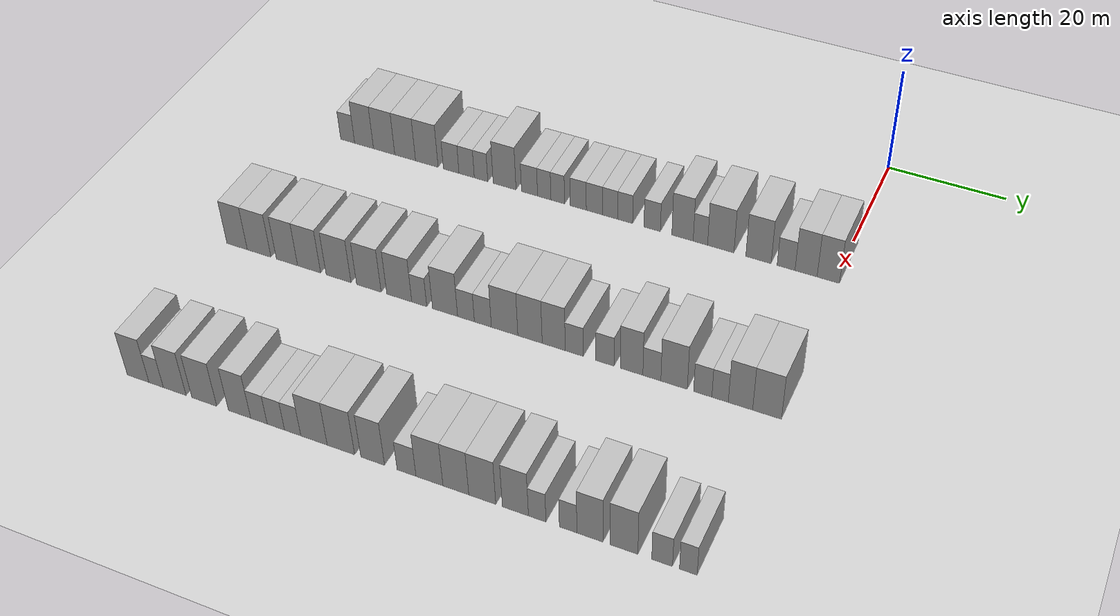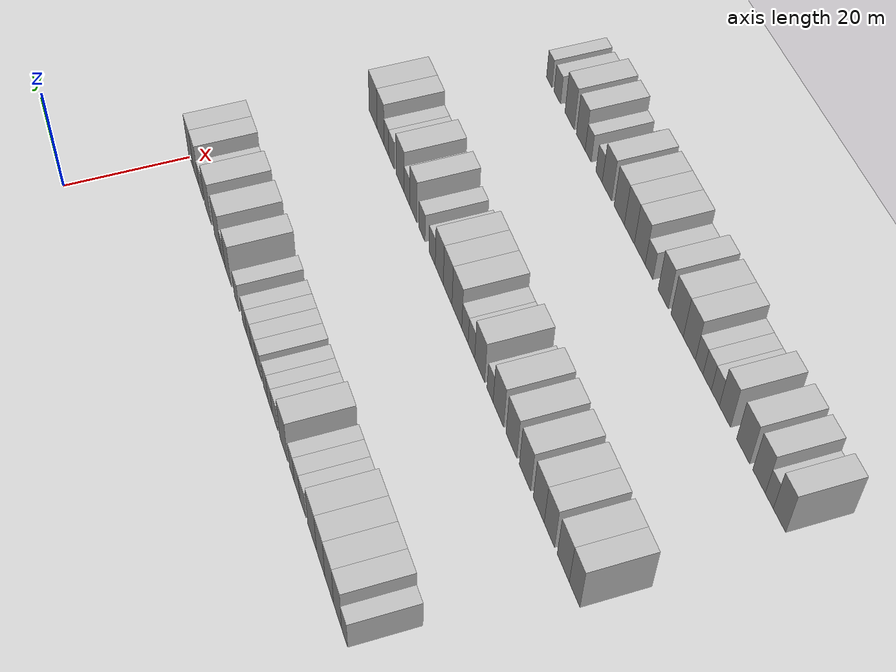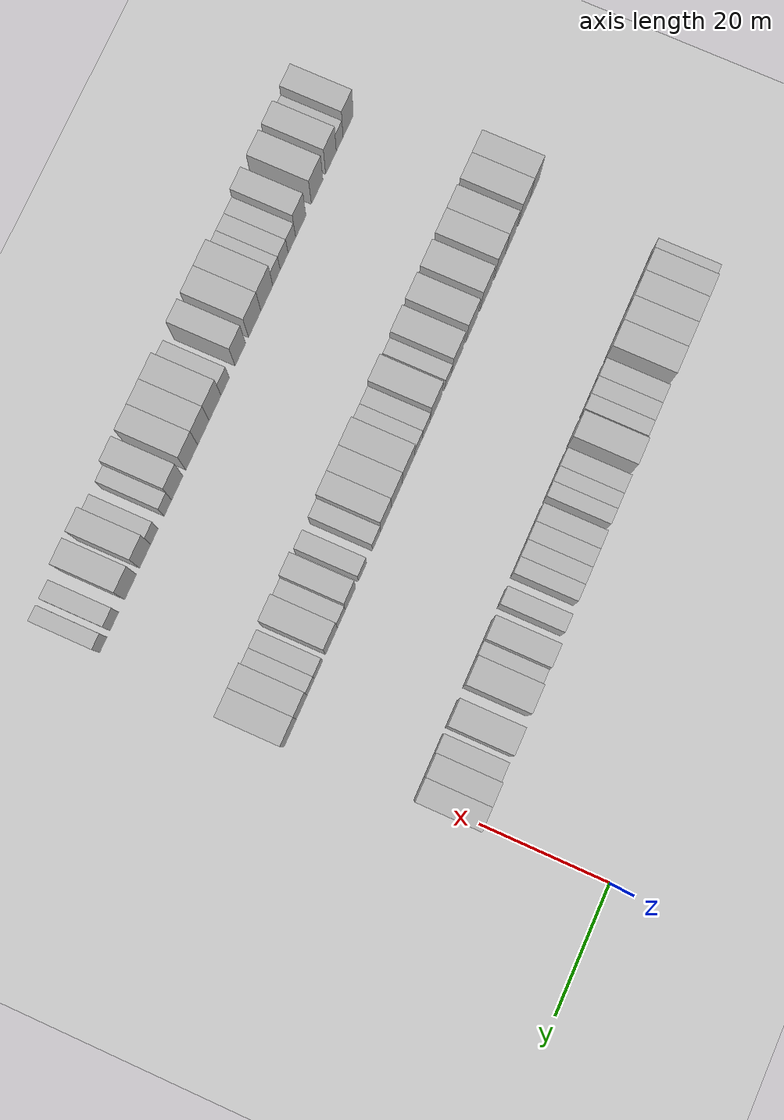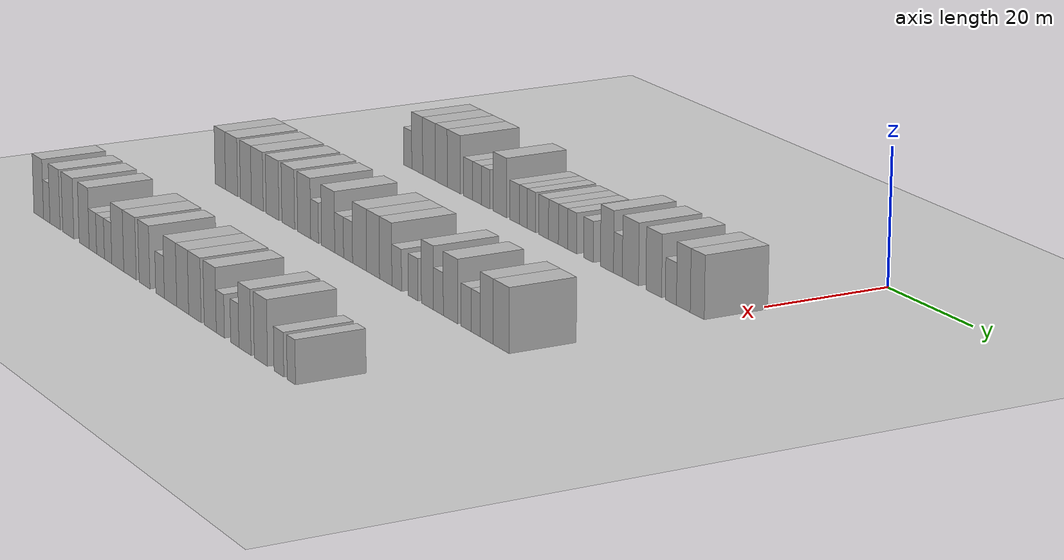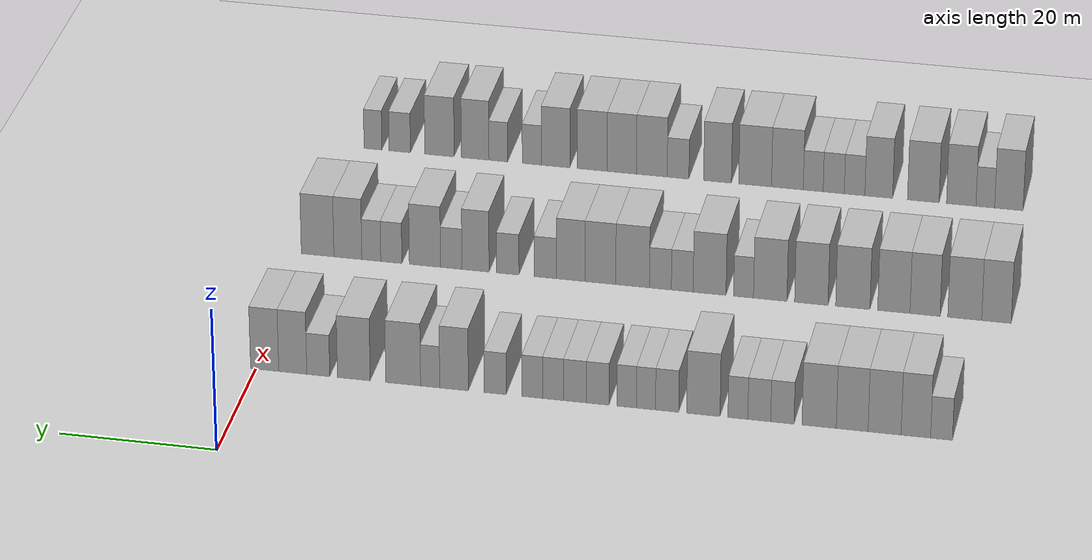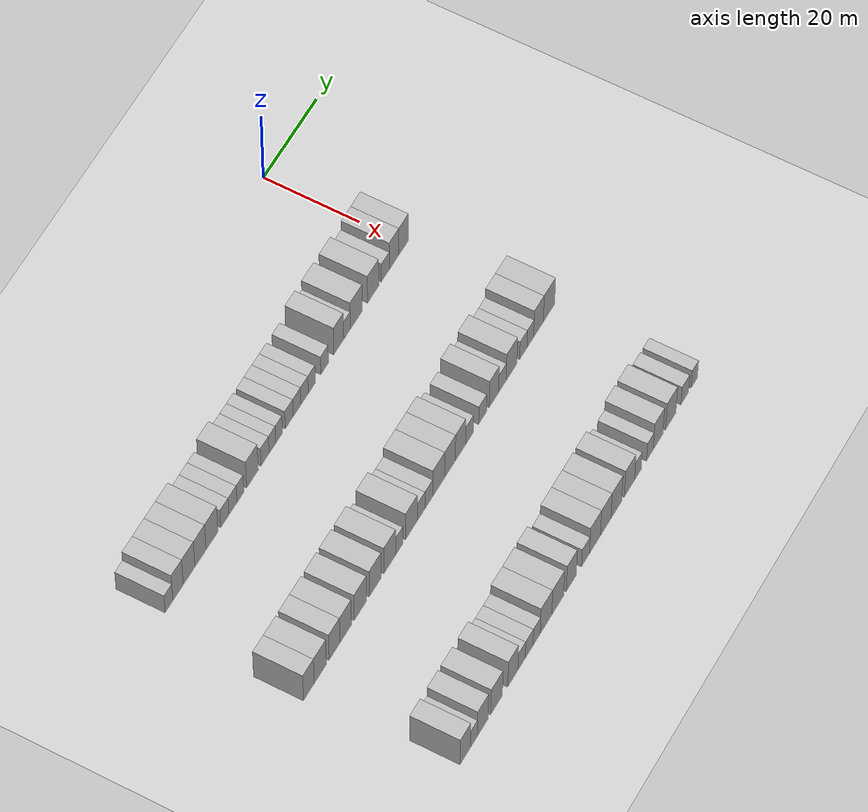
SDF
<sdf version="1.6">
 <world name="default">
  <include><name>ground_plane_1</name><uri>model://HANNAS_ground_plane</uri></include>
  <model name="building_47">
   <static>1</static>
   <pose>25.0000 -87.1205 0 0.000000 0.000000 0.000000</pose>
   <link name="link">
    <pose>0 0 3.00 0 0 0</pose>
    <collision name="collision"><geometry><box><size>10.0000 2.7242 6.0000</size></box></geometry></collision>
    <visual name="visual">
     <cast_shadows>0</cast_shadows>
     <geometry><box><size>10.0000 2.7242 6.0000</size></box></geometry>
     <material>
      <script>
       <uri>model://HANNAS_wall/materials/scripts</uri>
       <uri>model://HANNAS_wall/materials/textures</uri>
       <name>vrc/HANNAS_wall</name>
      </script>
     </material>
    </visual>
   </link>
  </model>
  <model name="building_48">
   <static>1</static>
   <pose>25.0000 -83.9220 0 0.000000 0.000000 0.000000</pose>
   <link name="link">
    <pose>0 0 4.50 0 0 0</pose>
    <collision name="collision"><geometry><box><size>10.0000 3.6729 9.0000</size></box></geometry></collision>
    <visual name="visual">
     <cast_shadows>0</cast_shadows>
     <geometry><box><size>10.0000 3.6729 9.0000</size></box></geometry>
     <material>
      <script>
       <uri>model://HANNAS_wall/materials/scripts</uri>
       <uri>model://HANNAS_wall/materials/textures</uri>
       <name>vrc/HANNAS_wall</name>
      </script>
     </material>
    </visual>
   </link>
  </model>
  <model name="building_49">
   <static>1</static>
   <pose>25.0000 -80.0256 0 0.000000 0.000000 0.000000</pose>
   <link name="link">
    <pose>0 0 4.50 0 0 0</pose>
    <collision name="collision"><geometry><box><size>10.0000 4.1198 9.0000</size></box></geometry></collision>
    <visual name="visual">
     <cast_shadows>0</cast_shadows>
     <geometry><box><size>10.0000 4.1198 9.0000</size></box></geometry>
     <material>
      <script>
       <uri>model://HANNAS_wall/materials/scripts</uri>
       <uri>model://HANNAS_wall/materials/textures</uri>
       <name>vrc/HANNAS_wall</name>
      </script>
     </material>
    </visual>
   </link>
  </model>
  <model name="building_50">
   <static>1</static>
   <pose>25.0000 -75.9775 0 0.000000 0.000000 0.000000</pose>
   <link name="link">
    <pose>0 0 4.50 0 0 0</pose>
    <collision name="collision"><geometry><box><size>10.0000 3.9763 9.0000</size></box></geometry></collision>
    <visual name="visual">
     <cast_shadows>0</cast_shadows>
     <geometry><box><size>10.0000 3.9763 9.0000</size></box></geometry>
     <material>
      <script>
       <uri>model://HANNAS_wall/materials/scripts</uri>
       <uri>model://HANNAS_wall/materials/textures</uri>
       <name>vrc/HANNAS_wall</name>
      </script>
     </material>
    </visual>
   </link>
  </model>
  <model name="building_51">
   <static>1</static>
   <pose>25.0000 -71.8430 0 0.000000 0.000000 0.000000</pose>
   <link name="link">
    <pose>0 0 4.50 0 0 0</pose>
    <collision name="collision"><geometry><box><size>10.0000 4.2927 9.0000</size></box></geometry></collision>
    <visual name="visual">
     <cast_shadows>0</cast_shadows>
     <geometry><box><size>10.0000 4.2927 9.0000</size></box></geometry>
     <material>
      <script>
       <uri>model://HANNAS_wall/materials/scripts</uri>
       <uri>model://HANNAS_wall/materials/textures</uri>
       <name>vrc/HANNAS_wall</name>
      </script>
     </material>
    </visual>
   </link>
  </model>
  <model name="building_52">
   <static>1</static>
   <pose>25.0000 -67.2285 0 0.000000 0.000000 0.000000</pose>
   <link name="link">
    <pose>0 0 3.00 0 0 0</pose>
    <collision name="collision"><geometry><box><size>10.0000 2.9363 6.0000</size></box></geometry></collision>
    <visual name="visual">
     <cast_shadows>0</cast_shadows>
     <geometry><box><size>10.0000 2.9363 6.0000</size></box></geometry>
     <material>
      <script>
       <uri>model://HANNAS_wall/materials/scripts</uri>
       <uri>model://HANNAS_wall/materials/textures</uri>
       <name>vrc/HANNAS_wall</name>
      </script>
     </material>
    </visual>
   </link>
  </model>
  <model name="building_53">
   <static>1</static>
   <pose>25.0000 -64.3253 0 0.000000 0.000000 0.000000</pose>
   <link name="link">
    <pose>0 0 3.00 0 0 0</pose>
    <collision name="collision"><geometry><box><size>10.0000 2.8700 6.0000</size></box></geometry></collision>
    <visual name="visual">
     <cast_shadows>0</cast_shadows>
     <geometry><box><size>10.0000 2.8700 6.0000</size></box></geometry>
     <material>
      <script>
       <uri>model://HANNAS_wall/materials/scripts</uri>
       <uri>model://HANNAS_wall/materials/textures</uri>
       <name>vrc/HANNAS_wall</name>
      </script>
     </material>
    </visual>
   </link>
  </model>
  <model name="building_54">
   <static>1</static>
   <pose>25.0000 -61.6366 0 0.000000 0.000000 0.000000</pose>
   <link name="link">
    <pose>0 0 3.00 0 0 0</pose>
    <collision name="collision"><geometry><box><size>10.0000 2.5075 6.0000</size></box></geometry></collision>
    <visual name="visual">
     <cast_shadows>0</cast_shadows>
     <geometry><box><size>10.0000 2.5075 6.0000</size></box></geometry>
     <material>
      <script>
       <uri>model://HANNAS_wall/materials/scripts</uri>
       <uri>model://HANNAS_wall/materials/textures</uri>
       <name>vrc/HANNAS_wall</name>
      </script>
     </material>
    </visual>
   </link>
  </model>
  <model name="building_55">
   <static>1</static>
   <pose>25.0000 -57.2749 0 0.000000 0.000000 0.000000</pose>
   <link name="link">
    <pose>0 0 4.50 0 0 0</pose>
    <collision name="collision"><geometry><box><size>10.0000 4.2159 9.0000</size></box></geometry></collision>
    <visual name="visual">
     <cast_shadows>0</cast_shadows>
     <geometry><box><size>10.0000 4.2159 9.0000</size></box></geometry>
     <material>
      <script>
       <uri>model://HANNAS_wall/materials/scripts</uri>
       <uri>model://HANNAS_wall/materials/textures</uri>
       <name>vrc/HANNAS_wall</name>
      </script>
     </material>
    </visual>
   </link>
  </model>
  <model name="building_56">
   <static>1</static>
   <pose>25.0000 -52.6987 0 0.000000 0.000000 0.000000</pose>
   <link name="link">
    <pose>0 0 3.00 0 0 0</pose>
    <collision name="collision"><geometry><box><size>10.0000 2.9365 6.0000</size></box></geometry></collision>
    <visual name="visual">
     <cast_shadows>0</cast_shadows>
     <geometry><box><size>10.0000 2.9365 6.0000</size></box></geometry>
     <material>
      <script>
       <uri>model://HANNAS_wall/materials/scripts</uri>
       <uri>model://HANNAS_wall/materials/textures</uri>
       <name>vrc/HANNAS_wall</name>
      </script>
     </material>
    </visual>
   </link>
  </model>
  <model name="building_57">
   <static>1</static>
   <pose>25.0000 -50.0138 0 0.000000 0.000000 0.000000</pose>
   <link name="link">
    <pose>0 0 3.00 0 0 0</pose>
    <collision name="collision"><geometry><box><size>10.0000 2.4333 6.0000</size></box></geometry></collision>
    <visual name="visual">
     <cast_shadows>0</cast_shadows>
     <geometry><box><size>10.0000 2.4333 6.0000</size></box></geometry>
     <material>
      <script>
       <uri>model://HANNAS_wall/materials/scripts</uri>
       <uri>model://HANNAS_wall/materials/textures</uri>
       <name>vrc/HANNAS_wall</name>
      </script>
     </material>
    </visual>
   </link>
  </model>
  <model name="building_58">
   <static>1</static>
   <pose>25.0000 -47.5625 0 0.000000 0.000000 0.000000</pose>
   <link name="link">
    <pose>0 0 3.00 0 0 0</pose>
    <collision name="collision"><geometry><box><size>10.0000 2.4693 6.0000</size></box></geometry></collision>
    <visual name="visual">
     <cast_shadows>0</cast_shadows>
     <geometry><box><size>10.0000 2.4693 6.0000</size></box></geometry>
     <material>
      <script>
       <uri>model://HANNAS_wall/materials/scripts</uri>
       <uri>model://HANNAS_wall/materials/textures</uri>
       <name>vrc/HANNAS_wall</name>
      </script>
     </material>
    </visual>
   </link>
  </model>
  <model name="building_59">
   <static>1</static>
   <pose>25.0000 -43.8836 0 0.000000 0.000000 0.000000</pose>
   <link name="link">
    <pose>0 0 3.00 0 0 0</pose>
    <collision name="collision"><geometry><box><size>10.0000 2.8885 6.0000</size></box></geometry></collision>
    <visual name="visual">
     <cast_shadows>0</cast_shadows>
     <geometry><box><size>10.0000 2.8885 6.0000</size></box></geometry>
     <material>
      <script>
       <uri>model://HANNAS_wall/materials/scripts</uri>
       <uri>model://HANNAS_wall/materials/textures</uri>
       <name>vrc/HANNAS_wall</name>
      </script>
     </material>
    </visual>
   </link>
  </model>
  <model name="building_60">
   <static>1</static>
   <pose>25.0000 -40.9950 0 0.000000 0.000000 0.000000</pose>
   <link name="link">
    <pose>0 0 3.00 0 0 0</pose>
    <collision name="collision"><geometry><box><size>10.0000 2.8887 6.0000</size></box></geometry></collision>
    <visual name="visual">
     <cast_shadows>0</cast_shadows>
     <geometry><box><size>10.0000 2.8887 6.0000</size></box></geometry>
     <material>
      <script>
       <uri>model://HANNAS_wall/materials/scripts</uri>
       <uri>model://HANNAS_wall/materials/textures</uri>
       <name>vrc/HANNAS_wall</name>
      </script>
     </material>
    </visual>
   </link>
  </model>
  <model name="building_61">
   <static>1</static>
   <pose>25.0000 -38.2087 0 0.000000 0.000000 0.000000</pose>
   <link name="link">
    <pose>0 0 3.00 0 0 0</pose>
    <collision name="collision"><geometry><box><size>10.0000 2.6837 6.0000</size></box></geometry></collision>
    <visual name="visual">
     <cast_shadows>0</cast_shadows>
     <geometry><box><size>10.0000 2.6837 6.0000</size></box></geometry>
     <material>
      <script>
       <uri>model://HANNAS_wall/materials/scripts</uri>
       <uri>model://HANNAS_wall/materials/textures</uri>
       <name>vrc/HANNAS_wall</name>
      </script>
     </material>
    </visual>
   </link>
  </model>
  <model name="building_62">
   <static>1</static>
   <pose>25.0000 -35.5522 0 0.000000 0.000000 0.000000</pose>
   <link name="link">
    <pose>0 0 3.00 0 0 0</pose>
    <collision name="collision"><geometry><box><size>10.0000 2.6294 6.0000</size></box></geometry></collision>
    <visual name="visual">
     <cast_shadows>0</cast_shadows>
     <geometry><box><size>10.0000 2.6294 6.0000</size></box></geometry>
     <material>
      <script>
       <uri>model://HANNAS_wall/materials/scripts</uri>
       <uri>model://HANNAS_wall/materials/textures</uri>
       <name>vrc/HANNAS_wall</name>
      </script>
     </material>
    </visual>
   </link>
  </model>
  <model name="building_63">
   <static>1</static>
   <pose>25.0000 -30.8139 0 0.000000 0.000000 0.000000</pose>
   <link name="link">
    <pose>0 0 3.00 0 0 0</pose>
    <collision name="collision"><geometry><box><size>10.0000 2.8473 6.0000</size></box></geometry></collision>
    <visual name="visual">
     <cast_shadows>0</cast_shadows>
     <geometry><box><size>10.0000 2.8473 6.0000</size></box></geometry>
     <material>
      <script>
       <uri>model://HANNAS_wall/materials/scripts</uri>
       <uri>model://HANNAS_wall/materials/textures</uri>
       <name>vrc/HANNAS_wall</name>
      </script>
     </material>
    </visual>
   </link>
  </model>
  <model name="building_64">
   <static>1</static>
   <pose>25.0000 -25.5539 0 0.000000 0.000000 0.000000</pose>
   <link name="link">
    <pose>0 0 4.50 0 0 0</pose>
    <collision name="collision"><geometry><box><size>10.0000 3.6727 9.0000</size></box></geometry></collision>
    <visual name="visual">
     <cast_shadows>0</cast_shadows>
     <geometry><box><size>10.0000 3.6727 9.0000</size></box></geometry>
     <material>
      <script>
       <uri>model://HANNAS_wall/materials/scripts</uri>
       <uri>model://HANNAS_wall/materials/textures</uri>
       <name>vrc/HANNAS_wall</name>
      </script>
     </material>
    </visual>
   </link>
  </model>
  <model name="building_65">
   <static>1</static>
   <pose>25.0000 -22.4882 0 0.000000 0.000000 0.000000</pose>
   <link name="link">
    <pose>0 0 3.00 0 0 0</pose>
    <collision name="collision"><geometry><box><size>10.0000 2.4585 6.0000</size></box></geometry></collision>
    <visual name="visual">
     <cast_shadows>0</cast_shadows>
     <geometry><box><size>10.0000 2.4585 6.0000</size></box></geometry>
     <material>
      <script>
       <uri>model://HANNAS_wall/materials/scripts</uri>
       <uri>model://HANNAS_wall/materials/textures</uri>
       <name>vrc/HANNAS_wall</name>
      </script>
     </material>
    </visual>
   </link>
  </model>
  <model name="building_66">
   <static>1</static>
   <pose>25.0000 -19.0182 0 0.000000 0.000000 0.000000</pose>
   <link name="link">
    <pose>0 0 4.50 0 0 0</pose>
    <collision name="collision"><geometry><box><size>10.0000 4.4814 9.0000</size></box></geometry></collision>
    <visual name="visual">
     <cast_shadows>0</cast_shadows>
     <geometry><box><size>10.0000 4.4814 9.0000</size></box></geometry>
     <material>
      <script>
       <uri>model://HANNAS_wall/materials/scripts</uri>
       <uri>model://HANNAS_wall/materials/textures</uri>
       <name>vrc/HANNAS_wall</name>
      </script>
     </material>
    </visual>
   </link>
  </model>
  <model name="building_67">
   <static>1</static>
   <pose>25.0000 -12.6598 0 0.000000 0.000000 0.000000</pose>
   <link name="link">
    <pose>0 0 4.50 0 0 0</pose>
    <collision name="collision"><geometry><box><size>10.0000 4.2355 9.0000</size></box></geometry></collision>
    <visual name="visual">
     <cast_shadows>0</cast_shadows>
     <geometry><box><size>10.0000 4.2355 9.0000</size></box></geometry>
     <material>
      <script>
       <uri>model://HANNAS_wall/materials/scripts</uri>
       <uri>model://HANNAS_wall/materials/textures</uri>
       <name>vrc/HANNAS_wall</name>
      </script>
     </material>
    </visual>
   </link>
  </model>
  <model name="building_68">
   <static>1</static>
   <pose>25.0000 -8.0594 0 0.000000 0.000000 0.000000</pose>
   <link name="link">
    <pose>0 0 3.00 0 0 0</pose>
    <collision name="collision"><geometry><box><size>10.0000 2.9652 6.0000</size></box></geometry></collision>
    <visual name="visual">
     <cast_shadows>0</cast_shadows>
     <geometry><box><size>10.0000 2.9652 6.0000</size></box></geometry>
     <material>
      <script>
       <uri>model://HANNAS_wall/materials/scripts</uri>
       <uri>model://HANNAS_wall/materials/textures</uri>
       <name>vrc/HANNAS_wall</name>
      </script>
     </material>
    </visual>
   </link>
  </model>
  <model name="building_69">
   <static>1</static>
   <pose>25.0000 -4.7598 0 0.000000 0.000000 0.000000</pose>
   <link name="link">
    <pose>0 0 4.50 0 0 0</pose>
    <collision name="collision"><geometry><box><size>10.0000 3.6340 9.0000</size></box></geometry></collision>
    <visual name="visual">
     <cast_shadows>0</cast_shadows>
     <geometry><box><size>10.0000 3.6340 9.0000</size></box></geometry>
     <material>
      <script>
       <uri>model://HANNAS_wall/materials/scripts</uri>
       <uri>model://HANNAS_wall/materials/textures</uri>
       <name>vrc/HANNAS_wall</name>
      </script>
     </material>
    </visual>
   </link>
  </model>
  <model name="building_70">
   <static>1</static>
   <pose>25.0000 -1.1142 0 0.000000 0.000000 0.000000</pose>
   <link name="link">
    <pose>0 0 4.50 0 0 0</pose>
    <collision name="collision"><geometry><box><size>10.0000 3.6573 9.0000</size></box></geometry></collision>
    <visual name="visual">
     <cast_shadows>0</cast_shadows>
     <geometry><box><size>10.0000 3.6573 9.0000</size></box></geometry>
     <material>
      <script>
       <uri>model://HANNAS_wall/materials/scripts</uri>
       <uri>model://HANNAS_wall/materials/textures</uri>
       <name>vrc/HANNAS_wall</name>
      </script>
     </material>
    </visual>
   </link>
  </model>
  <model name="building_193">
   <static>1</static>
   <pose>55.0000 -90.2112 0 0.000000 0.000000 0.000000</pose>
   <link name="link">
    <pose>0 0 4.50 0 0 0</pose>
    <collision name="collision"><geometry><box><size>10.0000 3.8118 9.0000</size></box></geometry></collision>
    <visual name="visual">
     <cast_shadows>0</cast_shadows>
     <geometry><box><size>10.0000 3.8118 9.0000</size></box></geometry>
     <material>
      <script>
       <uri>model://HANNAS_wall/materials/scripts</uri>
       <uri>model://HANNAS_wall/materials/textures</uri>
       <name>vrc/HANNAS_wall</name>
      </script>
     </material>
    </visual>
   </link>
  </model>
  <model name="building_194">
   <static>1</static>
   <pose>55.0000 -86.1188 0 0.000000 0.000000 0.000000</pose>
   <link name="link">
    <pose>0 0 4.50 0 0 0</pose>
    <collision name="collision"><geometry><box><size>10.0000 4.3730 9.0000</size></box></geometry></collision>
    <visual name="visual">
     <cast_shadows>0</cast_shadows>
     <geometry><box><size>10.0000 4.3730 9.0000</size></box></geometry>
     <material>
      <script>
       <uri>model://HANNAS_wall/materials/scripts</uri>
       <uri>model://HANNAS_wall/materials/textures</uri>
       <name>vrc/HANNAS_wall</name>
      </script>
     </material>
    </visual>
   </link>
  </model>
  <model name="building_195">
   <static>1</static>
   <pose>55.0000 -80.9849 0 0.000000 0.000000 0.000000</pose>
   <link name="link">
    <pose>0 0 4.50 0 0 0</pose>
    <collision name="collision"><geometry><box><size>10.0000 3.8947 9.0000</size></box></geometry></collision>
    <visual name="visual">
     <cast_shadows>0</cast_shadows>
     <geometry><box><size>10.0000 3.8947 9.0000</size></box></geometry>
     <material>
      <script>
       <uri>model://HANNAS_wall/materials/scripts</uri>
       <uri>model://HANNAS_wall/materials/textures</uri>
       <name>vrc/HANNAS_wall</name>
      </script>
     </material>
    </visual>
   </link>
  </model>
  <model name="building_196">
   <static>1</static>
   <pose>55.0000 -76.9464 0 0.000000 0.000000 0.000000</pose>
   <link name="link">
    <pose>0 0 4.50 0 0 0</pose>
    <collision name="collision"><geometry><box><size>10.0000 4.1825 9.0000</size></box></geometry></collision>
    <visual name="visual">
     <cast_shadows>0</cast_shadows>
     <geometry><box><size>10.0000 4.1825 9.0000</size></box></geometry>
     <material>
      <script>
       <uri>model://HANNAS_wall/materials/scripts</uri>
       <uri>model://HANNAS_wall/materials/textures</uri>
       <name>vrc/HANNAS_wall</name>
      </script>
     </material>
    </visual>
   </link>
  </model>
  <model name="building_197">
   <static>1</static>
   <pose>55.0000 -71.6240 0 0.000000 0.000000 0.000000</pose>
   <link name="link">
    <pose>0 0 4.50 0 0 0</pose>
    <collision name="collision"><geometry><box><size>10.0000 4.4622 9.0000</size></box></geometry></collision>
    <visual name="visual">
     <cast_shadows>0</cast_shadows>
     <geometry><box><size>10.0000 4.4622 9.0000</size></box></geometry>
     <material>
      <script>
       <uri>model://HANNAS_wall/materials/scripts</uri>
       <uri>model://HANNAS_wall/materials/textures</uri>
       <name>vrc/HANNAS_wall</name>
      </script>
     </material>
    </visual>
   </link>
  </model>
  <model name="building_198">
   <static>1</static>
   <pose>55.0000 -66.2171 0 0.000000 0.000000 0.000000</pose>
   <link name="link">
    <pose>0 0 4.50 0 0 0</pose>
    <collision name="collision"><geometry><box><size>10.0000 4.3515 9.0000</size></box></geometry></collision>
    <visual name="visual">
     <cast_shadows>0</cast_shadows>
     <geometry><box><size>10.0000 4.3515 9.0000</size></box></geometry>
     <material>
      <script>
       <uri>model://HANNAS_wall/materials/scripts</uri>
       <uri>model://HANNAS_wall/materials/textures</uri>
       <name>vrc/HANNAS_wall</name>
      </script>
     </material>
    </visual>
   </link>
  </model>
  <model name="building_199">
   <static>1</static>
   <pose>55.0000 -60.8538 0 0.000000 0.000000 0.000000</pose>
   <link name="link">
    <pose>0 0 4.50 0 0 0</pose>
    <collision name="collision"><geometry><box><size>10.0000 4.3753 9.0000</size></box></geometry></collision>
    <visual name="visual">
     <cast_shadows>0</cast_shadows>
     <geometry><box><size>10.0000 4.3753 9.0000</size></box></geometry>
     <material>
      <script>
       <uri>model://HANNAS_wall/materials/scripts</uri>
       <uri>model://HANNAS_wall/materials/textures</uri>
       <name>vrc/HANNAS_wall</name>
      </script>
     </material>
    </visual>
   </link>
  </model>
  <model name="building_200">
   <static>1</static>
   <pose>55.0000 -57.3651 0 0.000000 0.000000 0.000000</pose>
   <link name="link">
    <pose>0 0 3.00 0 0 0</pose>
    <collision name="collision"><geometry><box><size>10.0000 2.6020 6.0000</size></box></geometry></collision>
    <visual name="visual">
     <cast_shadows>0</cast_shadows>
     <geometry><box><size>10.0000 2.6020 6.0000</size></box></geometry>
     <material>
      <script>
       <uri>model://HANNAS_wall/materials/scripts</uri>
       <uri>model://HANNAS_wall/materials/textures</uri>
       <name>vrc/HANNAS_wall</name>
      </script>
     </material>
    </visual>
   </link>
  </model>
  <model name="building_201">
   <static>1</static>
   <pose>55.0000 -52.9068 0 0.000000 0.000000 0.000000</pose>
   <link name="link">
    <pose>0 0 4.50 0 0 0</pose>
    <collision name="collision"><geometry><box><size>10.0000 4.3148 9.0000</size></box></geometry></collision>
    <visual name="visual">
     <cast_shadows>0</cast_shadows>
     <geometry><box><size>10.0000 4.3148 9.0000</size></box></geometry>
     <material>
      <script>
       <uri>model://HANNAS_wall/materials/scripts</uri>
       <uri>model://HANNAS_wall/materials/textures</uri>
       <name>vrc/HANNAS_wall</name>
      </script>
     </material>
    </visual>
   </link>
  </model>
  <model name="building_202">
   <static>1</static>
   <pose>55.0000 -49.3180 0 0.000000 0.000000 0.000000</pose>
   <link name="link">
    <pose>0 0 3.00 0 0 0</pose>
    <collision name="collision"><geometry><box><size>10.0000 2.8627 6.0000</size></box></geometry></collision>
    <visual name="visual">
     <cast_shadows>0</cast_shadows>
     <geometry><box><size>10.0000 2.8627 6.0000</size></box></geometry>
     <material>
      <script>
       <uri>model://HANNAS_wall/materials/scripts</uri>
       <uri>model://HANNAS_wall/materials/textures</uri>
       <name>vrc/HANNAS_wall</name>
      </script>
     </material>
    </visual>
   </link>
  </model>
  <model name="building_203">
   <static>1</static>
   <pose>55.0000 -46.4471 0 0.000000 0.000000 0.000000</pose>
   <link name="link">
    <pose>0 0 3.00 0 0 0</pose>
    <collision name="collision"><geometry><box><size>10.0000 2.8791 6.0000</size></box></geometry></collision>
    <visual name="visual">
     <cast_shadows>0</cast_shadows>
     <geometry><box><size>10.0000 2.8791 6.0000</size></box></geometry>
     <material>
      <script>
       <uri>model://HANNAS_wall/materials/scripts</uri>
       <uri>model://HANNAS_wall/materials/textures</uri>
       <name>vrc/HANNAS_wall</name>
      </script>
     </material>
    </visual>
   </link>
  </model>
  <model name="building_204">
   <static>1</static>
   <pose>55.0000 -42.7832 0 0.000000 0.000000 0.000000</pose>
   <link name="link">
    <pose>0 0 4.50 0 0 0</pose>
    <collision name="collision"><geometry><box><size>10.0000 4.4487 9.0000</size></box></geometry></collision>
    <visual name="visual">
     <cast_shadows>0</cast_shadows>
     <geometry><box><size>10.0000 4.4487 9.0000</size></box></geometry>
     <material>
      <script>
       <uri>model://HANNAS_wall/materials/scripts</uri>
       <uri>model://HANNAS_wall/materials/textures</uri>
       <name>vrc/HANNAS_wall</name>
      </script>
     </material>
    </visual>
   </link>
  </model>
  <model name="building_205">
   <static>1</static>
   <pose>55.0000 -38.5308 0 0.000000 0.000000 0.000000</pose>
   <link name="link">
    <pose>0 0 4.50 0 0 0</pose>
    <collision name="collision"><geometry><box><size>10.0000 4.0562 9.0000</size></box></geometry></collision>
    <visual name="visual">
     <cast_shadows>0</cast_shadows>
     <geometry><box><size>10.0000 4.0562 9.0000</size></box></geometry>
     <material>
      <script>
       <uri>model://HANNAS_wall/materials/scripts</uri>
       <uri>model://HANNAS_wall/materials/textures</uri>
       <name>vrc/HANNAS_wall</name>
      </script>
     </material>
    </visual>
   </link>
  </model>
  <model name="building_206">
   <static>1</static>
   <pose>55.0000 -34.5973 0 0.000000 0.000000 0.000000</pose>
   <link name="link">
    <pose>0 0 4.50 0 0 0</pose>
    <collision name="collision"><geometry><box><size>10.0000 3.8108 9.0000</size></box></geometry></collision>
    <visual name="visual">
     <cast_shadows>0</cast_shadows>
     <geometry><box><size>10.0000 3.8108 9.0000</size></box></geometry>
     <material>
      <script>
       <uri>model://HANNAS_wall/materials/scripts</uri>
       <uri>model://HANNAS_wall/materials/textures</uri>
       <name>vrc/HANNAS_wall</name>
      </script>
     </material>
    </visual>
   </link>
  </model>
  <model name="building_207">
   <static>1</static>
   <pose>55.0000 -31.2158 0 0.000000 0.000000 0.000000</pose>
   <link name="link">
    <pose>0 0 3.00 0 0 0</pose>
    <collision name="collision"><geometry><box><size>10.0000 2.9521 6.0000</size></box></geometry></collision>
    <visual name="visual">
     <cast_shadows>0</cast_shadows>
     <geometry><box><size>10.0000 2.9521 6.0000</size></box></geometry>
     <material>
      <script>
       <uri>model://HANNAS_wall/materials/scripts</uri>
       <uri>model://HANNAS_wall/materials/textures</uri>
       <name>vrc/HANNAS_wall</name>
      </script>
     </material>
    </visual>
   </link>
  </model>
  <model name="building_208">
   <static>1</static>
   <pose>55.0000 -26.2525 0 0.000000 0.000000 0.000000</pose>
   <link name="link">
    <pose>0 0 3.00 0 0 0</pose>
    <collision name="collision"><geometry><box><size>10.0000 2.9745 6.0000</size></box></geometry></collision>
    <visual name="visual">
     <cast_shadows>0</cast_shadows>
     <geometry><box><size>10.0000 2.9745 6.0000</size></box></geometry>
     <material>
      <script>
       <uri>model://HANNAS_wall/materials/scripts</uri>
       <uri>model://HANNAS_wall/materials/textures</uri>
       <name>vrc/HANNAS_wall</name>
      </script>
     </material>
    </visual>
   </link>
  </model>
  <model name="building_209">
   <static>1</static>
   <pose>55.0000 -21.9597 0 0.000000 0.000000 0.000000</pose>
   <link name="link">
    <pose>0 0 4.50 0 0 0</pose>
    <collision name="collision"><geometry><box><size>10.0000 3.6111 9.0000</size></box></geometry></collision>
    <visual name="visual">
     <cast_shadows>0</cast_shadows>
     <geometry><box><size>10.0000 3.6111 9.0000</size></box></geometry>
     <material>
      <script>
       <uri>model://HANNAS_wall/materials/scripts</uri>
       <uri>model://HANNAS_wall/materials/textures</uri>
       <name>vrc/HANNAS_wall</name>
      </script>
     </material>
    </visual>
   </link>
  </model>
  <model name="building_210">
   <static>1</static>
   <pose>55.0000 -18.7268 0 0.000000 0.000000 0.000000</pose>
   <link name="link">
    <pose>0 0 3.00 0 0 0</pose>
    <collision name="collision"><geometry><box><size>10.0000 2.8549 6.0000</size></box></geometry></collision>
    <visual name="visual">
     <cast_shadows>0</cast_shadows>
     <geometry><box><size>10.0000 2.8549 6.0000</size></box></geometry>
     <material>
      <script>
       <uri>model://HANNAS_wall/materials/scripts</uri>
       <uri>model://HANNAS_wall/materials/textures</uri>
       <name>vrc/HANNAS_wall</name>
      </script>
     </material>
    </visual>
   </link>
  </model>
  <model name="building_211">
   <static>1</static>
   <pose>55.0000 -15.2177 0 0.000000 0.000000 0.000000</pose>
   <link name="link">
    <pose>0 0 4.50 0 0 0</pose>
    <collision name="collision"><geometry><box><size>10.0000 4.1632 9.0000</size></box></geometry></collision>
    <visual name="visual">
     <cast_shadows>0</cast_shadows>
     <geometry><box><size>10.0000 4.1632 9.0000</size></box></geometry>
     <material>
      <script>
       <uri>model://HANNAS_wall/materials/scripts</uri>
       <uri>model://HANNAS_wall/materials/textures</uri>
       <name>vrc/HANNAS_wall</name>
      </script>
     </material>
    </visual>
   </link>
  </model>
  <model name="building_212">
   <static>1</static>
   <pose>55.0000 -10.7203 0 0.000000 0.000000 0.000000</pose>
   <link name="link">
    <pose>0 0 3.00 0 0 0</pose>
    <collision name="collision"><geometry><box><size>10.0000 2.8317 6.0000</size></box></geometry></collision>
    <visual name="visual">
     <cast_shadows>0</cast_shadows>
     <geometry><box><size>10.0000 2.8317 6.0000</size></box></geometry>
     <material>
      <script>
       <uri>model://HANNAS_wall/materials/scripts</uri>
       <uri>model://HANNAS_wall/materials/textures</uri>
       <name>vrc/HANNAS_wall</name>
      </script>
     </material>
    </visual>
   </link>
  </model>
  <model name="building_213">
   <static>1</static>
   <pose>55.0000 -8.0339 0 0.000000 0.000000 0.000000</pose>
   <link name="link">
    <pose>0 0 3.00 0 0 0</pose>
    <collision name="collision"><geometry><box><size>10.0000 2.5411 6.0000</size></box></geometry></collision>
    <visual name="visual">
     <cast_shadows>0</cast_shadows>
     <geometry><box><size>10.0000 2.5411 6.0000</size></box></geometry>
     <material>
      <script>
       <uri>model://HANNAS_wall/materials/scripts</uri>
       <uri>model://HANNAS_wall/materials/textures</uri>
       <name>vrc/HANNAS_wall</name>
      </script>
     </material>
    </visual>
   </link>
  </model>
  <model name="building_214">
   <static>1</static>
   <pose>55.0000 -4.8901 0 0.000000 0.000000 0.000000</pose>
   <link name="link">
    <pose>0 0 4.50 0 0 0</pose>
    <collision name="collision"><geometry><box><size>10.0000 3.7464 9.0000</size></box></geometry></collision>
    <visual name="visual">
     <cast_shadows>0</cast_shadows>
     <geometry><box><size>10.0000 3.7464 9.0000</size></box></geometry>
     <material>
      <script>
       <uri>model://HANNAS_wall/materials/scripts</uri>
       <uri>model://HANNAS_wall/materials/textures</uri>
       <name>vrc/HANNAS_wall</name>
      </script>
     </material>
    </visual>
   </link>
  </model>
  <model name="building_215">
   <static>1</static>
   <pose>55.0000 -0.8221 0 0.000000 0.000000 0.000000</pose>
   <link name="link">
    <pose>0 0 4.50 0 0 0</pose>
    <collision name="collision"><geometry><box><size>10.0000 4.3896 9.0000</size></box></geometry></collision>
    <visual name="visual">
     <cast_shadows>0</cast_shadows>
     <geometry><box><size>10.0000 4.3896 9.0000</size></box></geometry>
     <material>
      <script>
       <uri>model://HANNAS_wall/materials/scripts</uri>
       <uri>model://HANNAS_wall/materials/textures</uri>
       <name>vrc/HANNAS_wall</name>
      </script>
     </material>
    </visual>
   </link>
  </model>
  <model name="building_335">
   <static>1</static>
   <pose>85.0000 -88.1488 0 0.000000 0.000000 0.000000</pose>
   <link name="link">
    <pose>0 0 4.50 0 0 0</pose>
    <collision name="collision"><geometry><box><size>10.0000 3.8054 9.0000</size></box></geometry></collision>
    <visual name="visual">
     <cast_shadows>0</cast_shadows>
     <geometry><box><size>10.0000 3.8054 9.0000</size></box></geometry>
     <material>
      <script>
       <uri>model://HANNAS_wall/materials/scripts</uri>
       <uri>model://HANNAS_wall/materials/textures</uri>
       <name>vrc/HANNAS_wall</name>
      </script>
     </material>
    </visual>
   </link>
  </model>
  <model name="building_336">
   <static>1</static>
   <pose>85.0000 -84.9976 0 0.000000 0.000000 0.000000</pose>
   <link name="link">
    <pose>0 0 3.00 0 0 0</pose>
    <collision name="collision"><geometry><box><size>10.0000 2.4970 6.0000</size></box></geometry></collision>
    <visual name="visual">
     <cast_shadows>0</cast_shadows>
     <geometry><box><size>10.0000 2.4970 6.0000</size></box></geometry>
     <material>
      <script>
       <uri>model://HANNAS_wall/materials/scripts</uri>
       <uri>model://HANNAS_wall/materials/textures</uri>
       <name>vrc/HANNAS_wall</name>
      </script>
     </material>
    </visual>
   </link>
  </model>
  <model name="building_337">
   <static>1</static>
   <pose>85.0000 -81.7753 0 0.000000 0.000000 0.000000</pose>
   <link name="link">
    <pose>0 0 4.50 0 0 0</pose>
    <collision name="collision"><geometry><box><size>10.0000 3.9476 9.0000</size></box></geometry></collision>
    <visual name="visual">
     <cast_shadows>0</cast_shadows>
     <geometry><box><size>10.0000 3.9476 9.0000</size></box></geometry>
     <material>
      <script>
       <uri>model://HANNAS_wall/materials/scripts</uri>
       <uri>model://HANNAS_wall/materials/textures</uri>
       <name>vrc/HANNAS_wall</name>
      </script>
     </material>
    </visual>
   </link>
  </model>
  <model name="building_338">
   <static>1</static>
   <pose>85.0000 -76.6779 0 0.000000 0.000000 0.000000</pose>
   <link name="link">
    <pose>0 0 4.50 0 0 0</pose>
    <collision name="collision"><geometry><box><size>10.0000 4.2474 9.0000</size></box></geometry></collision>
    <visual name="visual">
     <cast_shadows>0</cast_shadows>
     <geometry><box><size>10.0000 4.2474 9.0000</size></box></geometry>
     <material>
      <script>
       <uri>model://HANNAS_wall/materials/scripts</uri>
       <uri>model://HANNAS_wall/materials/textures</uri>
       <name>vrc/HANNAS_wall</name>
      </script>
     </material>
    </visual>
   </link>
  </model>
  <model name="building_339">
   <static>1</static>
   <pose>85.0000 -70.6830 0 0.000000 0.000000 0.000000</pose>
   <link name="link">
    <pose>0 0 4.50 0 0 0</pose>
    <collision name="collision"><geometry><box><size>10.0000 3.7423 9.0000</size></box></geometry></collision>
    <visual name="visual">
     <cast_shadows>0</cast_shadows>
     <geometry><box><size>10.0000 3.7423 9.0000</size></box></geometry>
     <material>
      <script>
       <uri>model://HANNAS_wall/materials/scripts</uri>
       <uri>model://HANNAS_wall/materials/textures</uri>
       <name>vrc/HANNAS_wall</name>
      </script>
     </material>
    </visual>
   </link>
  </model>
  <model name="building_340">
   <static>1</static>
   <pose>85.0000 -67.4285 0 0.000000 0.000000 0.000000</pose>
   <link name="link">
    <pose>0 0 3.00 0 0 0</pose>
    <collision name="collision"><geometry><box><size>10.0000 2.7667 6.0000</size></box></geometry></collision>
    <visual name="visual">
     <cast_shadows>0</cast_shadows>
     <geometry><box><size>10.0000 2.7667 6.0000</size></box></geometry>
     <material>
      <script>
       <uri>model://HANNAS_wall/materials/scripts</uri>
       <uri>model://HANNAS_wall/materials/textures</uri>
       <name>vrc/HANNAS_wall</name>
      </script>
     </material>
    </visual>
   </link>
  </model>
  <model name="building_341">
   <static>1</static>
   <pose>85.0000 -64.6098 0 0.000000 0.000000 0.000000</pose>
   <link name="link">
    <pose>0 0 3.00 0 0 0</pose>
    <collision name="collision"><geometry><box><size>10.0000 2.8707 6.0000</size></box></geometry></collision>
    <visual name="visual">
     <cast_shadows>0</cast_shadows>
     <geometry><box><size>10.0000 2.8707 6.0000</size></box></geometry>
     <material>
      <script>
       <uri>model://HANNAS_wall/materials/scripts</uri>
       <uri>model://HANNAS_wall/materials/textures</uri>
       <name>vrc/HANNAS_wall</name>
      </script>
     </material>
    </visual>
   </link>
  </model>
  <model name="building_342">
   <static>1</static>
   <pose>85.0000 -61.8314 0 0.000000 0.000000 0.000000</pose>
   <link name="link">
    <pose>0 0 3.00 0 0 0</pose>
    <collision name="collision"><geometry><box><size>10.0000 2.6861 6.0000</size></box></geometry></collision>
    <visual name="visual">
     <cast_shadows>0</cast_shadows>
     <geometry><box><size>10.0000 2.6861 6.0000</size></box></geometry>
     <material>
      <script>
       <uri>model://HANNAS_wall/materials/scripts</uri>
       <uri>model://HANNAS_wall/materials/textures</uri>
       <name>vrc/HANNAS_wall</name>
      </script>
     </material>
    </visual>
   </link>
  </model>
  <model name="building_343">
   <static>1</static>
   <pose>85.0000 -58.3299 0 0.000000 0.000000 0.000000</pose>
   <link name="link">
    <pose>0 0 4.50 0 0 0</pose>
    <collision name="collision"><geometry><box><size>10.0000 4.3170 9.0000</size></box></geometry></collision>
    <visual name="visual">
     <cast_shadows>0</cast_shadows>
     <geometry><box><size>10.0000 4.3170 9.0000</size></box></geometry>
     <material>
      <script>
       <uri>model://HANNAS_wall/materials/scripts</uri>
       <uri>model://HANNAS_wall/materials/textures</uri>
       <name>vrc/HANNAS_wall</name>
      </script>
     </material>
    </visual>
   </link>
  </model>
  <model name="building_344">
   <static>1</static>
   <pose>85.0000 -53.9475 0 0.000000 0.000000 0.000000</pose>
   <link name="link">
    <pose>0 0 4.50 0 0 0</pose>
    <collision name="collision"><geometry><box><size>10.0000 4.4478 9.0000</size></box></geometry></collision>
    <visual name="visual">
     <cast_shadows>0</cast_shadows>
     <geometry><box><size>10.0000 4.4478 9.0000</size></box></geometry>
     <material>
      <script>
       <uri>model://HANNAS_wall/materials/scripts</uri>
       <uri>model://HANNAS_wall/materials/textures</uri>
       <name>vrc/HANNAS_wall</name>
      </script>
     </material>
    </visual>
   </link>
  </model>
  <model name="building_345">
   <static>1</static>
   <pose>85.0000 -48.8300 0 0.000000 0.000000 0.000000</pose>
   <link name="link">
    <pose>0 0 4.50 0 0 0</pose>
    <collision name="collision"><geometry><box><size>10.0000 3.7871 9.0000</size></box></geometry></collision>
    <visual name="visual">
     <cast_shadows>0</cast_shadows>
     <geometry><box><size>10.0000 3.7871 9.0000</size></box></geometry>
     <material>
      <script>
       <uri>model://HANNAS_wall/materials/scripts</uri>
       <uri>model://HANNAS_wall/materials/textures</uri>
       <name>vrc/HANNAS_wall</name>
      </script>
     </material>
    </visual>
   </link>
  </model>
  <model name="building_346">
   <static>1</static>
   <pose>85.0000 -43.4535 0 0.000000 0.000000 0.000000</pose>
   <link name="link">
    <pose>0 0 3.00 0 0 0</pose>
    <collision name="collision"><geometry><box><size>10.0000 2.9661 6.0000</size></box></geometry></collision>
    <visual name="visual">
     <cast_shadows>0</cast_shadows>
     <geometry><box><size>10.0000 2.9661 6.0000</size></box></geometry>
     <material>
      <script>
       <uri>model://HANNAS_wall/materials/scripts</uri>
       <uri>model://HANNAS_wall/materials/textures</uri>
       <name>vrc/HANNAS_wall</name>
      </script>
     </material>
    </visual>
   </link>
  </model>
  <model name="building_347">
   <static>1</static>
   <pose>85.0000 -39.8650 0 0.000000 0.000000 0.000000</pose>
   <link name="link">
    <pose>0 0 4.50 0 0 0</pose>
    <collision name="collision"><geometry><box><size>10.0000 4.2109 9.0000</size></box></geometry></collision>
    <visual name="visual">
     <cast_shadows>0</cast_shadows>
     <geometry><box><size>10.0000 4.2109 9.0000</size></box></geometry>
     <material>
      <script>
       <uri>model://HANNAS_wall/materials/scripts</uri>
       <uri>model://HANNAS_wall/materials/textures</uri>
       <name>vrc/HANNAS_wall</name>
      </script>
     </material>
    </visual>
   </link>
  </model>
  <model name="building_348">
   <static>1</static>
   <pose>85.0000 -35.7609 0 0.000000 0.000000 0.000000</pose>
   <link name="link">
    <pose>0 0 4.50 0 0 0</pose>
    <collision name="collision"><geometry><box><size>10.0000 3.9973 9.0000</size></box></geometry></collision>
    <visual name="visual">
     <cast_shadows>0</cast_shadows>
     <geometry><box><size>10.0000 3.9973 9.0000</size></box></geometry>
     <material>
      <script>
       <uri>model://HANNAS_wall/materials/scripts</uri>
       <uri>model://HANNAS_wall/materials/textures</uri>
       <name>vrc/HANNAS_wall</name>
      </script>
     </material>
    </visual>
   </link>
  </model>
  <model name="building_349">
   <static>1</static>
   <pose>85.0000 -31.6939 0 0.000000 0.000000 0.000000</pose>
   <link name="link">
    <pose>0 0 4.50 0 0 0</pose>
    <collision name="collision"><geometry><box><size>10.0000 4.1366 9.0000</size></box></geometry></collision>
    <visual name="visual">
     <cast_shadows>0</cast_shadows>
     <geometry><box><size>10.0000 4.1366 9.0000</size></box></geometry>
     <material>
      <script>
       <uri>model://HANNAS_wall/materials/scripts</uri>
       <uri>model://HANNAS_wall/materials/textures</uri>
       <name>vrc/HANNAS_wall</name>
      </script>
     </material>
    </visual>
   </link>
  </model>
  <model name="building_350">
   <static>1</static>
   <pose>85.0000 -26.6586 0 0.000000 0.000000 0.000000</pose>
   <link name="link">
    <pose>0 0 4.50 0 0 0</pose>
    <collision name="collision"><geometry><box><size>10.0000 3.9339 9.0000</size></box></geometry></collision>
    <visual name="visual">
     <cast_shadows>0</cast_shadows>
     <geometry><box><size>10.0000 3.9339 9.0000</size></box></geometry>
     <material>
      <script>
       <uri>model://HANNAS_wall/materials/scripts</uri>
       <uri>model://HANNAS_wall/materials/textures</uri>
       <name>vrc/HANNAS_wall</name>
      </script>
     </material>
    </visual>
   </link>
  </model>
  <model name="building_351">
   <static>1</static>
   <pose>85.0000 -23.3810 0 0.000000 0.000000 0.000000</pose>
   <link name="link">
    <pose>0 0 3.00 0 0 0</pose>
    <collision name="collision"><geometry><box><size>10.0000 2.6213 6.0000</size></box></geometry></collision>
    <visual name="visual">
     <cast_shadows>0</cast_shadows>
     <geometry><box><size>10.0000 2.6213 6.0000</size></box></geometry>
     <material>
      <script>
       <uri>model://HANNAS_wall/materials/scripts</uri>
       <uri>model://HANNAS_wall/materials/textures</uri>
       <name>vrc/HANNAS_wall</name>
      </script>
     </material>
    </visual>
   </link>
  </model>
  <model name="building_352">
   <static>1</static>
   <pose>85.0000 -18.7715 0 0.000000 0.000000 0.000000</pose>
   <link name="link">
    <pose>0 0 3.00 0 0 0</pose>
    <collision name="collision"><geometry><box><size>10.0000 2.5977 6.0000</size></box></geometry></collision>
    <visual name="visual">
     <cast_shadows>0</cast_shadows>
     <geometry><box><size>10.0000 2.5977 6.0000</size></box></geometry>
     <material>
      <script>
       <uri>model://HANNAS_wall/materials/scripts</uri>
       <uri>model://HANNAS_wall/materials/textures</uri>
       <name>vrc/HANNAS_wall</name>
      </script>
     </material>
    </visual>
   </link>
  </model>
  <model name="building_353">
   <static>1</static>
   <pose>85.0000 -15.5644 0 0.000000 0.000000 0.000000</pose>
   <link name="link">
    <pose>0 0 4.50 0 0 0</pose>
    <collision name="collision"><geometry><box><size>10.0000 3.8165 9.0000</size></box></geometry></collision>
    <visual name="visual">
     <cast_shadows>0</cast_shadows>
     <geometry><box><size>10.0000 3.8165 9.0000</size></box></geometry>
     <material>
      <script>
       <uri>model://HANNAS_wall/materials/scripts</uri>
       <uri>model://HANNAS_wall/materials/textures</uri>
       <name>vrc/HANNAS_wall</name>
      </script>
     </material>
    </visual>
   </link>
  </model>
  <model name="building_354">
   <static>1</static>
   <pose>85.0000 -10.6237 0 0.000000 0.000000 0.000000</pose>
   <link name="link">
    <pose>0 0 4.50 0 0 0</pose>
    <collision name="collision"><geometry><box><size>10.0000 4.0648 9.0000</size></box></geometry></collision>
    <visual name="visual">
     <cast_shadows>0</cast_shadows>
     <geometry><box><size>10.0000 4.0648 9.0000</size></box></geometry>
     <material>
      <script>
       <uri>model://HANNAS_wall/materials/scripts</uri>
       <uri>model://HANNAS_wall/materials/textures</uri>
       <name>vrc/HANNAS_wall</name>
      </script>
     </material>
    </visual>
   </link>
  </model>
  <model name="building_355">
   <static>1</static>
   <pose>85.0000 -5.1126 0 0.000000 0.000000 0.000000</pose>
   <link name="link">
    <pose>0 0 3.00 0 0 0</pose>
    <collision name="collision"><geometry><box><size>10.0000 2.9574 6.0000</size></box></geometry></collision>
    <visual name="visual">
     <cast_shadows>0</cast_shadows>
     <geometry><box><size>10.0000 2.9574 6.0000</size></box></geometry>
     <material>
      <script>
       <uri>model://HANNAS_wall/materials/scripts</uri>
       <uri>model://HANNAS_wall/materials/textures</uri>
       <name>vrc/HANNAS_wall</name>
      </script>
     </material>
    </visual>
   </link>
  </model>
  <model name="building_356">
   <static>1</static>
   <pose>85.0000 -1.3903 0 0.000000 0.000000 0.000000</pose>
   <link name="link">
    <pose>0 0 3.00 0 0 0</pose>
    <collision name="collision"><geometry><box><size>10.0000 2.4871 6.0000</size></box></geometry></collision>
    <visual name="visual">
     <cast_shadows>0</cast_shadows>
     <geometry><box><size>10.0000 2.4871 6.0000</size></box></geometry>
     <material>
      <script>
       <uri>model://HANNAS_wall/materials/scripts</uri>
       <uri>model://HANNAS_wall/materials/textures</uri>
       <name>vrc/HANNAS_wall</name>
      </script>
     </material>
    </visual>
   </link>
  </model>
 </world>
</sdf>
